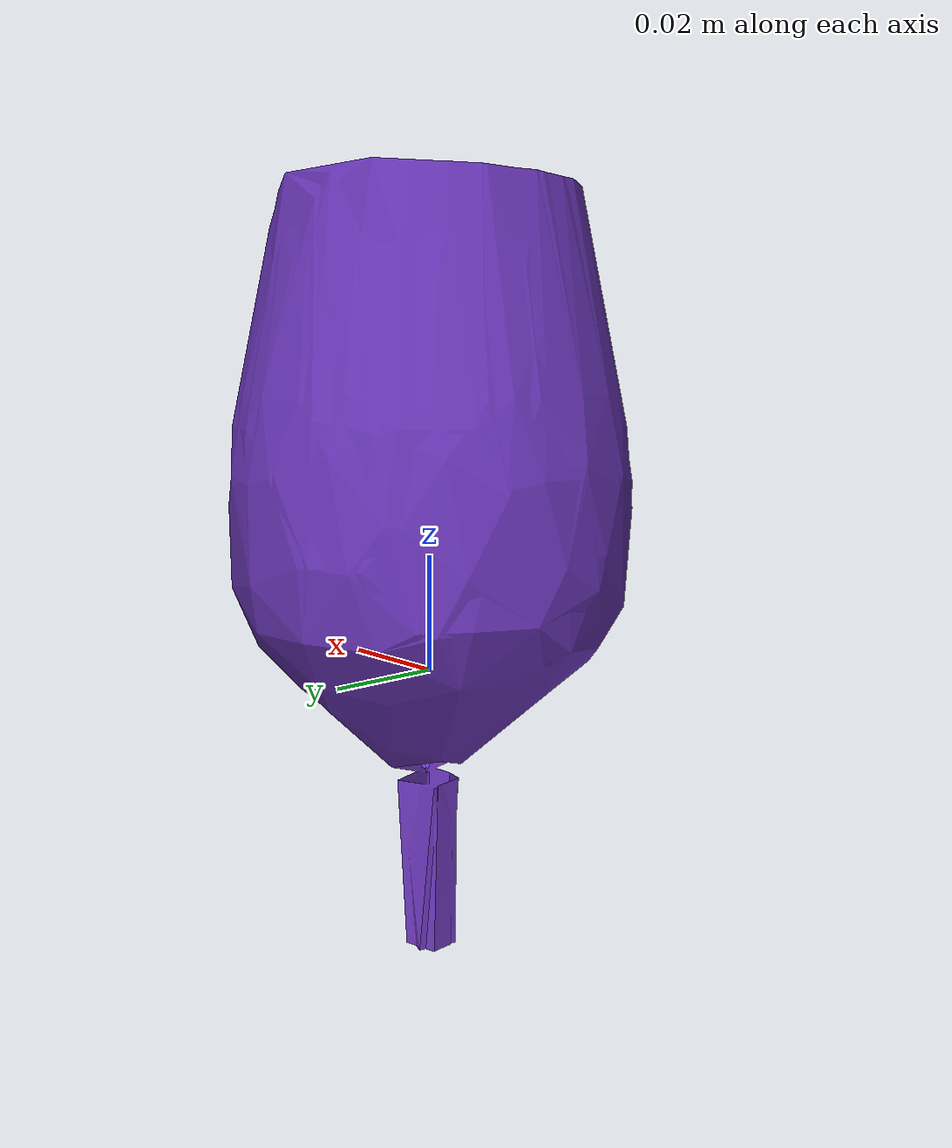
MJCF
<mujoco model="top_watertight_tiny">
  <default>
    <default group="2" type="mesh" contype="0" conaffinity="0">
      <geom group="2" type="mesh" contype="0" conaffinity="0"/>
    </default>
    <default group="3" type="mesh">
      <geom group="3" type="mesh"/>
    </default>
  </default>
  <asset>
    <mesh file="top_watertight_tiny.obj"/>
    <mesh file="top_watertight_tiny_collision_0.obj"/>
    <mesh file="top_watertight_tiny_collision_1.obj"/>
    <mesh file="top_watertight_tiny_collision_2.obj"/>
    <mesh file="top_watertight_tiny_collision_3.obj"/>
    <mesh file="top_watertight_tiny_collision_4.obj"/>
    <mesh file="top_watertight_tiny_collision_5.obj"/>
    <mesh file="top_watertight_tiny_collision_6.obj"/>
    <mesh file="top_watertight_tiny_collision_7.obj"/>
    <mesh file="top_watertight_tiny_collision_8.obj"/>
    <mesh file="top_watertight_tiny_collision_9.obj"/>
    <mesh file="top_watertight_tiny_collision_10.obj"/>
    <mesh file="top_watertight_tiny_collision_11.obj"/>
    <mesh file="top_watertight_tiny_collision_12.obj"/>
    <mesh file="top_watertight_tiny_collision_13.obj"/>
    <mesh file="top_watertight_tiny_collision_14.obj"/>
    <mesh file="top_watertight_tiny_collision_15.obj"/>
    <mesh file="top_watertight_tiny_collision_16.obj"/>
    <mesh file="top_watertight_tiny_collision_17.obj"/>
    <mesh file="top_watertight_tiny_collision_18.obj"/>
    <mesh file="top_watertight_tiny_collision_19.obj"/>
    <mesh file="top_watertight_tiny_collision_20.obj"/>
    <mesh file="top_watertight_tiny_collision_21.obj"/>
    <mesh file="top_watertight_tiny_collision_22.obj"/>
    <mesh file="top_watertight_tiny_collision_23.obj"/>
    <mesh file="top_watertight_tiny_collision_24.obj"/>
    <mesh file="top_watertight_tiny_collision_25.obj"/>
    <mesh file="top_watertight_tiny_collision_26.obj"/>
    <mesh file="top_watertight_tiny_collision_27.obj"/>
    <mesh file="top_watertight_tiny_collision_28.obj"/>
    <mesh file="top_watertight_tiny_collision_29.obj"/>
    <mesh file="top_watertight_tiny_collision_30.obj"/>
    <mesh file="top_watertight_tiny_collision_31.obj"/>
    <mesh file="top_watertight_tiny_collision_32.obj"/>
    <mesh file="top_watertight_tiny_collision_33.obj"/>
    <mesh file="top_watertight_tiny_collision_34.obj"/>
    <mesh file="top_watertight_tiny_collision_35.obj"/>
    <mesh file="top_watertight_tiny_collision_36.obj"/>
    <mesh file="top_watertight_tiny_collision_37.obj"/>
    <mesh file="top_watertight_tiny_collision_38.obj"/>
    <mesh file="top_watertight_tiny_collision_39.obj"/>
    <mesh file="top_watertight_tiny_collision_40.obj"/>
    <mesh file="top_watertight_tiny_collision_41.obj"/>
    <mesh file="top_watertight_tiny_collision_42.obj"/>
    <mesh file="top_watertight_tiny_collision_43.obj"/>
    <mesh file="top_watertight_tiny_collision_44.obj"/>
    <mesh file="top_watertight_tiny_collision_45.obj"/>
    <mesh file="top_watertight_tiny_collision_46.obj"/>
    <mesh file="top_watertight_tiny_collision_47.obj"/>
    <mesh file="top_watertight_tiny_collision_48.obj"/>
    <mesh file="top_watertight_tiny_collision_49.obj"/>
    <mesh file="top_watertight_tiny_collision_50.obj"/>
    <mesh file="top_watertight_tiny_collision_51.obj"/>
  </asset>
  <worldbody>
    <body name="top_watertight_tiny">
      <freejoint/>
      <geom mesh="top_watertight_tiny" group="2" type="mesh" rgba="0.4 0.2 0.7 1" contype="0" conaffinity="0"/>
      <geom mesh="top_watertight_tiny_collision_0" rgba="0.6904689774517353 0.9890842779499041 0.09949597614255179 1" group="3" type="mesh"/>
      <geom mesh="top_watertight_tiny_collision_1" rgba="0.20717381249098255 0.18849855824066852 0.24908406799260785 1" group="3" type="mesh"/>
      <geom mesh="top_watertight_tiny_collision_2" rgba="0.440859379224923 0.9830569270165341 0.36981585510684134 1" group="3" type="mesh"/>
      <geom mesh="top_watertight_tiny_collision_3" rgba="0.291212882244426 0.09450013191835704 0.7182321906929979 1" group="3" type="mesh"/>
      <geom mesh="top_watertight_tiny_collision_4" rgba="0.21123881625625773 0.8996467632661002 0.07170441287094398 1" group="3" type="mesh"/>
      <geom mesh="top_watertight_tiny_collision_5" rgba="0.7135981555732481 0.9014954097794105 0.11325771074249136 1" group="3" type="mesh"/>
      <geom mesh="top_watertight_tiny_collision_6" rgba="0.7591167061416585 0.3238434258883003 0.7082786691735463 1" group="3" type="mesh"/>
      <geom mesh="top_watertight_tiny_collision_7" rgba="0.04004939632796911 0.28726323842490586 0.5389506837299923 1" group="3" type="mesh"/>
      <geom mesh="top_watertight_tiny_collision_8" rgba="0.18368826423979978 0.5944400065796317 0.930681193947245 1" group="3" type="mesh"/>
      <geom mesh="top_watertight_tiny_collision_9" rgba="0.24048566638288127 0.2293011616281444 0.4521122085611543 1" group="3" type="mesh"/>
      <geom mesh="top_watertight_tiny_collision_10" rgba="0.6512256286445702 0.42669877651200216 0.3921145363146994 1" group="3" type="mesh"/>
      <geom mesh="top_watertight_tiny_collision_11" rgba="0.16277900444721904 0.5695508040449854 0.7692021096108951 1" group="3" type="mesh"/>
      <geom mesh="top_watertight_tiny_collision_12" rgba="0.7158997331469885 0.5149857598872699 0.9976523581776857 1" group="3" type="mesh"/>
      <geom mesh="top_watertight_tiny_collision_13" rgba="0.15551992363586775 0.3790410827160491 0.5456054320322961 1" group="3" type="mesh"/>
      <geom mesh="top_watertight_tiny_collision_14" rgba="0.8224079835110917 0.6821161050280695 0.2385056042041458 1" group="3" type="mesh"/>
      <geom mesh="top_watertight_tiny_collision_15" rgba="0.9296863934149605 0.9984860444341328 0.3481639335018697 1" group="3" type="mesh"/>
      <geom mesh="top_watertight_tiny_collision_16" rgba="0.24490772738945032 0.31643401161728424 0.6398526459120216 1" group="3" type="mesh"/>
      <geom mesh="top_watertight_tiny_collision_17" rgba="0.08794449227038448 0.9242495945313735 0.7563222501650175 1" group="3" type="mesh"/>
      <geom mesh="top_watertight_tiny_collision_18" rgba="0.7550837154238529 0.8367604318344449 0.785682723329208 1" group="3" type="mesh"/>
      <geom mesh="top_watertight_tiny_collision_19" rgba="0.3702593651986552 0.5649525319418951 0.6951867447934799 1" group="3" type="mesh"/>
      <geom mesh="top_watertight_tiny_collision_20" rgba="0.5532840347397743 0.5624670803242385 0.27658860449583955 1" group="3" type="mesh"/>
      <geom mesh="top_watertight_tiny_collision_21" rgba="0.6262297093045662 0.6451839441605068 0.9544950443549879 1" group="3" type="mesh"/>
      <geom mesh="top_watertight_tiny_collision_22" rgba="0.03630275139534833 0.07433219771691979 0.9260854462874198 1" group="3" type="mesh"/>
      <geom mesh="top_watertight_tiny_collision_23" rgba="0.4945248157584413 0.2559977848004854 0.9090307564474931 1" group="3" type="mesh"/>
      <geom mesh="top_watertight_tiny_collision_24" rgba="0.2424732581294783 0.1955964024479977 0.9178515211330457 1" group="3" type="mesh"/>
      <geom mesh="top_watertight_tiny_collision_25" rgba="0.43058780105960404 0.0964721141225513 0.8410931652334637 1" group="3" type="mesh"/>
      <geom mesh="top_watertight_tiny_collision_26" rgba="0.5364980899837714 0.9620002418342933 0.5346442291946701 1" group="3" type="mesh"/>
      <geom mesh="top_watertight_tiny_collision_27" rgba="0.8702204167067742 0.11283553761515286 0.8935103517532219 1" group="3" type="mesh"/>
      <geom mesh="top_watertight_tiny_collision_28" rgba="0.6800940259561571 0.27017689498009 0.7579429982866561 1" group="3" type="mesh"/>
      <geom mesh="top_watertight_tiny_collision_29" rgba="0.3730037247971182 0.4464181674580233 0.42621125664929405 1" group="3" type="mesh"/>
      <geom mesh="top_watertight_tiny_collision_30" rgba="0.3787832087519072 0.5218897918631809 0.5581832773519496 1" group="3" type="mesh"/>
      <geom mesh="top_watertight_tiny_collision_31" rgba="0.30969358717550066 0.1133592165548617 0.887557750156526 1" group="3" type="mesh"/>
      <geom mesh="top_watertight_tiny_collision_32" rgba="0.5542964581733533 0.16867086736270154 0.28405763126455574 1" group="3" type="mesh"/>
      <geom mesh="top_watertight_tiny_collision_33" rgba="0.6975404435265781 0.8786163879153178 0.9617720184524395 1" group="3" type="mesh"/>
      <geom mesh="top_watertight_tiny_collision_34" rgba="0.7379994263631419 0.8969369989603164 0.8330125683777921 1" group="3" type="mesh"/>
      <geom mesh="top_watertight_tiny_collision_35" rgba="0.6408112447943736 0.8809250698499326 0.3055939117131984 1" group="3" type="mesh"/>
      <geom mesh="top_watertight_tiny_collision_36" rgba="0.9581427563081736 0.9963308803059672 0.4289479534283629 1" group="3" type="mesh"/>
      <geom mesh="top_watertight_tiny_collision_37" rgba="0.18425004595838046 0.3345157422176043 0.4044812439374973 1" group="3" type="mesh"/>
      <geom mesh="top_watertight_tiny_collision_38" rgba="0.07953034823107785 0.42043172230033643 0.47293426328209875 1" group="3" type="mesh"/>
      <geom mesh="top_watertight_tiny_collision_39" rgba="0.0191164015221571 0.5485602122953134 0.37781664066464093 1" group="3" type="mesh"/>
      <geom mesh="top_watertight_tiny_collision_40" rgba="0.5798288326117634 0.8700334817525227 0.16117887036531164 1" group="3" type="mesh"/>
      <geom mesh="top_watertight_tiny_collision_41" rgba="0.5197662873983837 0.2623361975509999 0.9023706097884123 1" group="3" type="mesh"/>
      <geom mesh="top_watertight_tiny_collision_42" rgba="0.6325563756334056 0.4297217064963207 0.6912984104312961 1" group="3" type="mesh"/>
      <geom mesh="top_watertight_tiny_collision_43" rgba="0.5557096606297367 0.39995831573970364 0.5448112443252793 1" group="3" type="mesh"/>
      <geom mesh="top_watertight_tiny_collision_44" rgba="0.650211947174801 0.8688523328212309 0.9809933425965481 1" group="3" type="mesh"/>
      <geom mesh="top_watertight_tiny_collision_45" rgba="0.38380259836308595 0.025110086906677043 0.398230777206835 1" group="3" type="mesh"/>
      <geom mesh="top_watertight_tiny_collision_46" rgba="0.2410766019574434 0.5978889536051465 0.4028412978831627 1" group="3" type="mesh"/>
      <geom mesh="top_watertight_tiny_collision_47" rgba="0.8559711954619551 0.3058445698990788 0.39048756892749426 1" group="3" type="mesh"/>
      <geom mesh="top_watertight_tiny_collision_48" rgba="0.31295300952013105 0.9579661183922655 0.1755050288041906 1" group="3" type="mesh"/>
      <geom mesh="top_watertight_tiny_collision_49" rgba="0.035797642619801895 0.8000821952877026 0.02416966809031229 1" group="3" type="mesh"/>
      <geom mesh="top_watertight_tiny_collision_50" rgba="0.5276476180759115 0.057094808515037676 0.629926011525558 1" group="3" type="mesh"/>
      <geom mesh="top_watertight_tiny_collision_51" rgba="0.7782968621714623 0.2124044693784456 0.7989907620067174 1" group="3" type="mesh"/>
    </body>
  </worldbody>
</mujoco>
